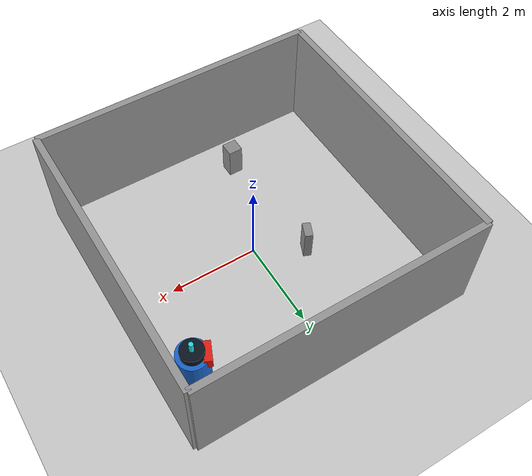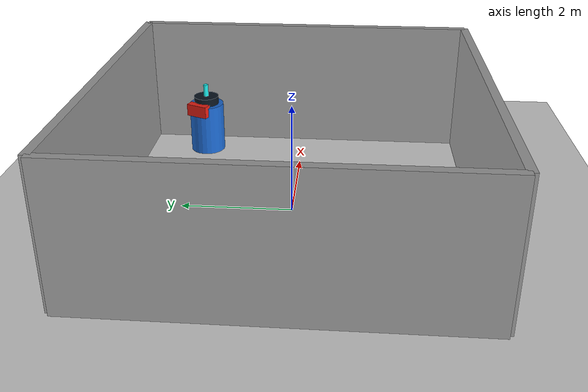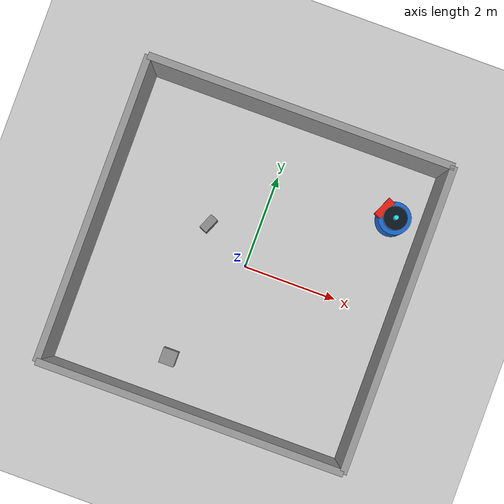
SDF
<sdf version="1.7">
 <world name="default">
  <plugin name="socnav_plugin" filename="libSocNavPlugin.so">
   <robot_name>robot</robot_name>
   <trajectory_file>/home/hunav_gz_classic_ws/SocNav3_trajectories/src6/000003940.json</trajectory_file>
   <human_slots>1</human_slots>
   <goal_angle_mesh>
    <angle_threshold>0.826331314588</angle_threshold>
    <uri>/home/hunav_gz_classic_ws/src/socnav_gazebo_reproducer/meshes/000003940_goal_angle_00.stl</uri>
   </goal_angle_mesh>
  </plugin>
  <light name="sun" type="directional">
   <pose>0 0 10 0 -0 0</pose>
   <diffuse>0.8 0.8 0.8 1</diffuse>
   <specular>0.2 0.2 0.2 1</specular>
   <attenuation>
    <range>1000</range>
    <constant>0.9</constant>
    <linear>0.01</linear>
    <quadratic>0.001</quadratic>
   </attenuation>
   <direction>-0.5 0.1 -0.9</direction>
   <spot><inner_angle>0</inner_angle><outer_angle>0</outer_angle><falloff>0</falloff></spot>
  </light>
  <model name="ground_plane">
   <static>1</static>
   <link name="link">
    <collision name="collision">
     <geometry><plane><normal>0 0 1</normal><size>100 100</size></plane></geometry>
     <surface><friction><ode><mu>100</mu><mu2>50</mu2></ode></friction></surface>
    </collision>
    <visual name="visual">
     <cast_shadows>0</cast_shadows>
     <geometry><plane><normal>0 0 1</normal><size>100 100</size></plane></geometry>
     <material>
      <script><uri>file://media/materials/scripts/kitchen.material</uri><name>Kitchen/CounterTop_H</name></script>
     </material>
    </visual>
   </link>
  </model>
  <gravity>0 0 -9.8</gravity>
  <magnetic_field>6e-06 2.3e-05 -4.2e-05</magnetic_field>
  <atmosphere type="adiabatic"/>
  <physics type="ode">
   <max_step_size>0.001</max_step_size>
   <real_time_factor>1</real_time_factor>
   <real_time_update_rate>1000</real_time_update_rate>
  </physics>
  <scene><ambient>0.4 0.4 0.4 1</ambient><background>0.7 0.7 0.7 1</background><shadows>1</shadows></scene>
  <audio><device>default</device></audio>
  <spherical_coordinates>
   <surface_model>EARTH_WGS84</surface_model>
   <latitude_deg>0</latitude_deg>
   <longitude_deg>0</longitude_deg>
   <elevation>0</elevation>
   <heading_deg>0</heading_deg>
  </spherical_coordinates>
  <model name="robot">
   <pose>2.5519642543524657 1.9704694217965613 0.5 0 0 2.7252911077833786</pose>
   <link name="link">
    <collision name="collision">
     <geometry><cylinder><radius>0.3449205372056701</radius><length>1.0</length></cylinder></geometry>
    </collision>
    <visual name="visual">
     <geometry><cylinder><radius>0.3449205372056701</radius><length>1.0</length></cylinder></geometry>
     <material><ambient>0.1 0.4 0.8 1</ambient><diffuse>0.1 0.4 0.8 1</diffuse></material>
    </visual>
    <visual name="robot_top">
     <pose>0 0 0.58 0 0 0</pose>
     <geometry><cylinder><radius>0.24834278678808247</radius><length>0.16</length></cylinder></geometry>
     <material><ambient>0.04 0.08 0.12 1</ambient><diffuse>0.04 0.08 0.12 1</diffuse></material>
    </visual>
    <visual name="robot_front">
     <pose>0.2897332512527629 0 0.44 0 0 0</pose>
     <geometry><box><size>0.16556185785872166 0.44149828762325777 0.24</size></box></geometry>
     <material><ambient>0.9 0.12 0.08 1</ambient><diffuse>0.9 0.12 0.08 1</diffuse></material>
    </visual>
    <visual name="robot_sensor">
     <pose>0 0 0.78 0 0 0</pose>
     <geometry><cylinder><radius>0.048288875208793824</radius><length>0.24</length></cylinder></geometry>
     <material><ambient>0.1 0.9 0.9 1</ambient><diffuse>0.1 0.9 0.9 1</diffuse></material>
    </visual>
   </link>
  </model>
  <model name="static_object_0">
   <static>true</static>
   <pose>-1.0200052402339173 0.5692886750121451 0.375 0 0 1.1645416372506574</pose>
   <link name="link">
    <collision name="collision"><geometry><box><size>0.35 0.18 0.75</size></box></geometry></collision>
    <visual name="visual">
     <geometry><box><size>0.35 0.18 0.75</size></box></geometry>
     <material><ambient>0.55 0.55 0.55 1</ambient><diffuse>0.55 0.55 0.55 1</diffuse></material>
    </visual>
   </link>
  </model>
  <model name="static_object_3">
   <static>true</static>
   <pose>-0.849935633658988 -2.315438001772153 0.375 0 0 0</pose>
   <link name="link">
    <collision name="collision">
     <geometry><box><size>0.32746150571658983 0.32746150571658983 0.75</size></box></geometry>
    </collision>
    <visual name="visual">
     <geometry><box><size>0.32746150571658983 0.32746150571658983 0.75</size></box></geometry>
     <material><ambient>0.55 0.55 0.55 1</ambient><diffuse>0.55 0.55 0.55 1</diffuse></material>
    </visual>
   </link>
  </model>
  <model name="simple_world_test">
   <link name="Wall_0">
    <collision name="Wall_0_Collision">
     <geometry><box><size>6.452820789024919 0.15 2.5</size></box></geometry>
     <pose>0 0 1.25 0 -0 0</pose>
    </collision>
    <visual name="Wall_0_Visual">
     <pose>0 0 1.25 0 -0 0</pose>
     <geometry><box><size>6.452820789024919 0.15 2.5</size></box></geometry>
     <material>
      <script><uri>file://media/materials/scripts/gazebo.material</uri><name>Gazebo/Grey</name></script>
      <ambient>1 1 1 1</ambient>
     </material>
     <meta><layer>0</layer></meta>
    </visual>
    <pose>3.21641039451246 0.0 0 0 -0 -1.5707963267948966</pose>
   </link>
   <link name="Wall_1">
    <collision name="Wall_1_Collision">
     <geometry><box><size>6.452820789024919 0.15 2.5</size></box></geometry>
     <pose>0 0 1.25 0 -0 0</pose>
    </collision>
    <visual name="Wall_1_Visual">
     <pose>0 0 1.25 0 -0 0</pose>
     <geometry><box><size>6.452820789024919 0.15 2.5</size></box></geometry>
     <material>
      <script><uri>file://media/materials/scripts/gazebo.material</uri><name>Gazebo/Grey</name></script>
      <ambient>1 1 1 1</ambient>
     </material>
     <meta><layer>0</layer></meta>
    </visual>
    <pose>0.0 -3.21641039451246 0 0 -0 -3.141592653589793</pose>
   </link>
   <link name="Wall_2">
    <collision name="Wall_2_Collision">
     <geometry><box><size>6.452820789024919 0.15 2.5</size></box></geometry>
     <pose>0 0 1.25 0 -0 0</pose>
    </collision>
    <visual name="Wall_2_Visual">
     <pose>0 0 1.25 0 -0 0</pose>
     <geometry><box><size>6.452820789024919 0.15 2.5</size></box></geometry>
     <material>
      <script><uri>file://media/materials/scripts/gazebo.material</uri><name>Gazebo/Grey</name></script>
      <ambient>1 1 1 1</ambient>
     </material>
     <meta><layer>0</layer></meta>
    </visual>
    <pose>-3.21641039451246 0.0 0 0 -0 1.5707963267948966</pose>
   </link>
   <link name="Wall_3">
    <collision name="Wall_3_Collision">
     <geometry><box><size>6.452820789024919 0.15 2.5</size></box></geometry>
     <pose>0 0 1.25 0 -0 0</pose>
    </collision>
    <visual name="Wall_3_Visual">
     <pose>0 0 1.25 0 -0 0</pose>
     <geometry><box><size>6.452820789024919 0.15 2.5</size></box></geometry>
     <material>
      <script><uri>file://media/materials/scripts/gazebo.material</uri><name>Gazebo/Grey</name></script>
      <ambient>1 1 1 1</ambient>
     </material>
     <meta><layer>0</layer></meta>
    </visual>
    <pose>0.0 3.21641039451246 0 0 -0 0.0</pose>
   </link>
   <static>1</static>
  </model>
 </world>
</sdf>
